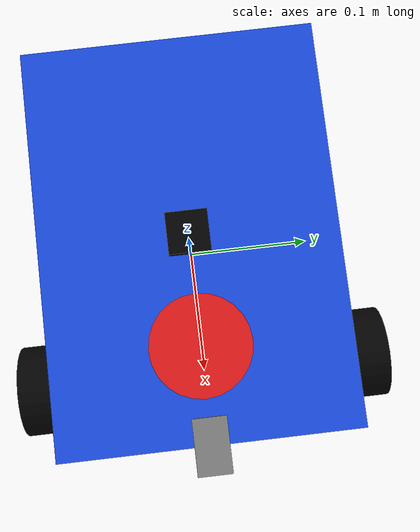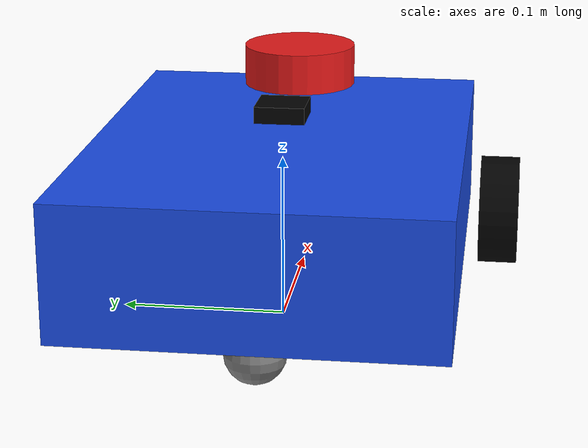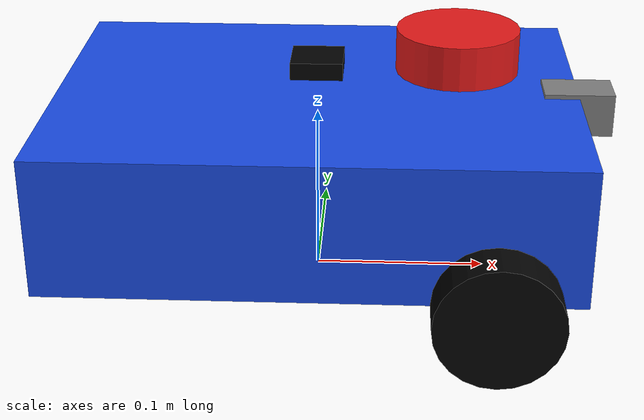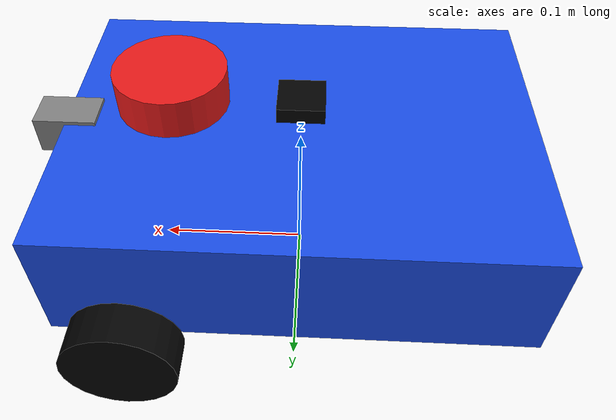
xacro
<?xml version="1.0"?>
<robot name="diffbot" xmlns:xacro="http://www.ros.org/wiki/xacro">
  <!-- Stable entry point. Components live in focused files below. -->
  <xacro:include filename="$(find my_diffbot_description)/urdf/include/properties.xacro"/>
  <xacro:include filename="$(find my_diffbot_description)/urdf/include/materials.xacro"/>
  <xacro:include filename="$(find my_diffbot_description)/urdf/include/base.xacro"/>
  <xacro:include filename="$(find my_diffbot_description)/urdf/include/sensors.xacro"/>
  <xacro:include filename="$(find my_diffbot_description)/urdf/gazebo/materials.gazebo.xacro"/>
  <xacro:include filename="$(find my_diffbot_description)/urdf/gazebo/diff_drive.gazebo.xacro"/>
  <xacro:include filename="$(find my_diffbot_description)/urdf/gazebo/sensors.gazebo.xacro"/>
</robot>

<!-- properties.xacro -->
<robot xmlns:xacro="http://www.ros.org/wiki/xacro">
  <xacro:property name="base_length" value="0.30"/>
  <xacro:property name="base_width" value="0.22"/>
  <xacro:property name="base_height" value="0.08"/>
  <xacro:property name="wheel_radius" value="0.035"/>
  <xacro:property name="wheel_width" value="0.025"/>
  <xacro:property name="wheel_y_offset" value="0.13"/>
  <xacro:property name="wheel_z_offset" value="0.035"/>
  <xacro:property name="caster_radius" value="0.018"/>
</robot>

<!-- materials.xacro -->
<robot xmlns:xacro="http://www.ros.org/wiki/xacro">
  <material name="blue"><color rgba="0.1 0.3 0.9 1"/></material>
  <material name="black"><color rgba="0.01 0.01 0.01 1"/></material>
  <material name="grey"><color rgba="0.5 0.5 0.5 1"/></material>
  <material name="red"><color rgba="0.9 0.1 0.1 1"/></material>
</robot>

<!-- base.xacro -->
<robot xmlns:xacro="http://www.ros.org/wiki/xacro">
  <link name="base_footprint"/>
  <joint name="base_footprint_joint" type="fixed">
    <parent link="base_footprint"/>
    <child link="base_link"/>
    <origin xyz="0 0 0.075" rpy="0 0 0"/>
  </joint>

  <link name="base_link">
    <visual>
      <geometry><box size="${base_length} ${base_width} ${base_height}"/></geometry>
      <material name="blue"/>
    </visual>
    <collision>
      <geometry><box size="${base_length} ${base_width} ${base_height}"/></geometry>
    </collision>
    <inertial>
      <mass value="2.0"/>
      <inertia ixx="0.00913" ixy="0" ixz="0"
               iyy="0.01607" iyz="0" izz="0.02307"/>
    </inertial>
  </link>

  <xacro:macro name="drive_wheel" params="side y">
    <link name="${side}_wheel_link">
      <visual>
        <origin rpy="${pi / 2} 0 0"/>
        <geometry><cylinder radius="${wheel_radius}" length="${wheel_width}"/></geometry>
        <material name="black"/>
      </visual>
      <collision>
        <origin rpy="${pi / 2} 0 0"/>
        <geometry><cylinder radius="${wheel_radius}" length="${wheel_width}"/></geometry>
      </collision>
      <inertial>
        <mass value="0.2"/>
        <inertia ixx="0.0000717" ixy="0" ixz="0"
                 iyy="0.0001225" iyz="0" izz="0.0000717"/>
      </inertial>
    </link>
    <joint name="${side}_wheel_joint" type="continuous">
      <parent link="base_link"/>
      <child link="${side}_wheel_link"/>
      <origin xyz="0.1 ${y} -${wheel_z_offset}"/>
      <axis xyz="0 1 0"/>
      <dynamics damping="0.2" friction="0.1"/>
    </joint>
  </xacro:macro>
  <xacro:drive_wheel side="left" y="${wheel_y_offset}"/>
  <xacro:drive_wheel side="right" y="${-wheel_y_offset}"/>

  <link name="caster_wheel_link">
    <visual>
      <geometry><sphere radius="${caster_radius}"/></geometry>
      <material name="grey"/>
    </visual>
    <collision><geometry><sphere radius="${caster_radius}"/></geometry></collision>
    <inertial>
      <mass value="0.05"/>
      <inertia ixx="0.00000648" ixy="0" ixz="0"
               iyy="0.00000648" iyz="0" izz="0.00000648"/>
    </inertial>
  </link>
  <joint name="caster_wheel_joint" type="fixed">
    <parent link="base_link"/>
    <child link="caster_wheel_link"/>
    <origin xyz="-0.11 0 -0.055"/>
  </joint>
</robot>

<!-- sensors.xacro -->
<robot xmlns:xacro="http://www.ros.org/wiki/xacro">
  <link name="laser_link">
    <visual>
      <geometry><cylinder radius="0.035" length="0.025"/></geometry>
      <material name="red"/>
    </visual>
  </link>
  <joint name="laser_joint" type="fixed">
    <parent link="base_link"/>
    <child link="laser_link"/>
    <origin xyz="0.08 0 0.065"/>
  </joint>

  <link name="camera_link">
    <visual>
      <geometry><box size="0.04 0.025 0.025"/></geometry>
      <material name="grey"/>
    </visual>
  </link>
  <joint name="camera_joint" type="fixed">
    <parent link="base_link"/>
    <child link="camera_link"/>
    <origin xyz="0.15 0 0.03"/>
  </joint>

  <!-- REP-103 optical convention: z forward, x right, y down. -->
  <link name="camera_optical_frame"/>
  <joint name="camera_optical_joint" type="fixed">
    <parent link="camera_link"/>
    <child link="camera_optical_frame"/>
    <origin xyz="0 0 0" rpy="-${pi / 2} 0 -${pi / 2}"/>
  </joint>

  <link name="imu_link">
    <visual>
      <geometry><box size="0.03 0.03 0.01"/></geometry>
      <material name="black"/>
    </visual>
  </link>
  <joint name="imu_joint" type="fixed">
    <parent link="base_link"/>
    <child link="imu_link"/>
    <origin xyz="0 0 0.055"/>
  </joint>
</robot>
